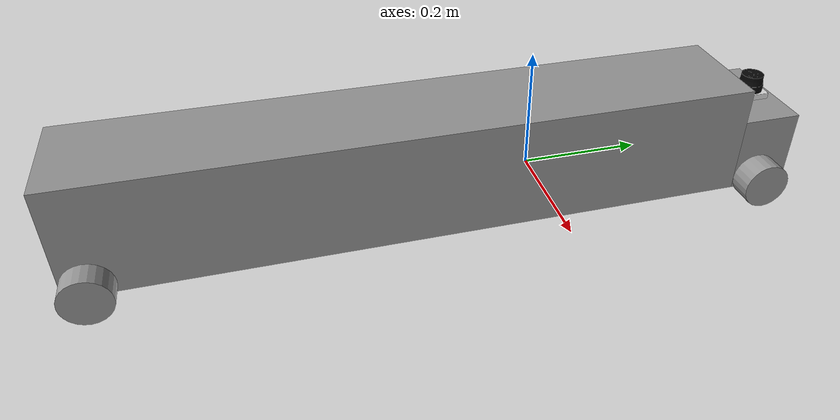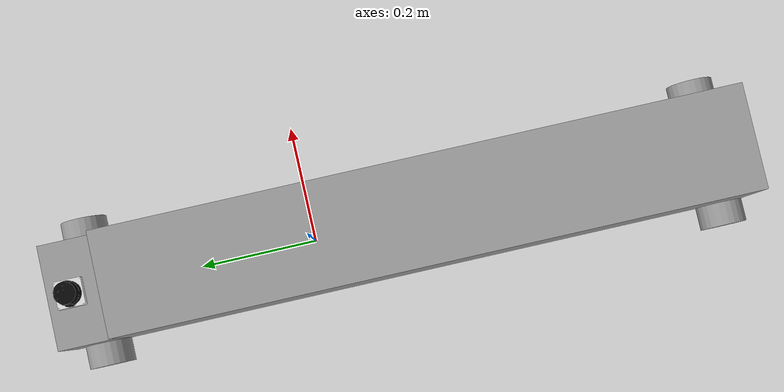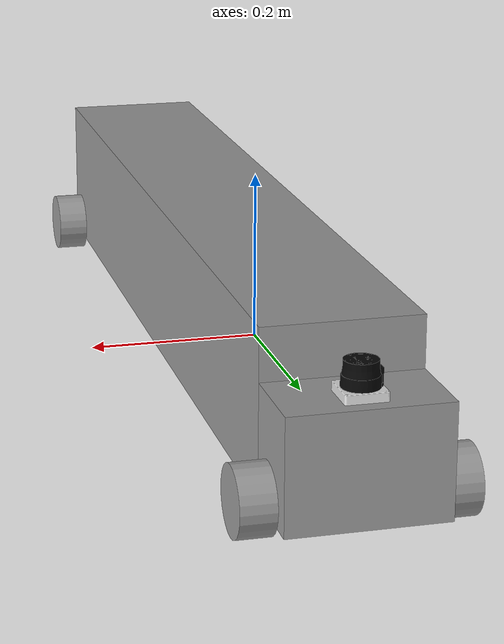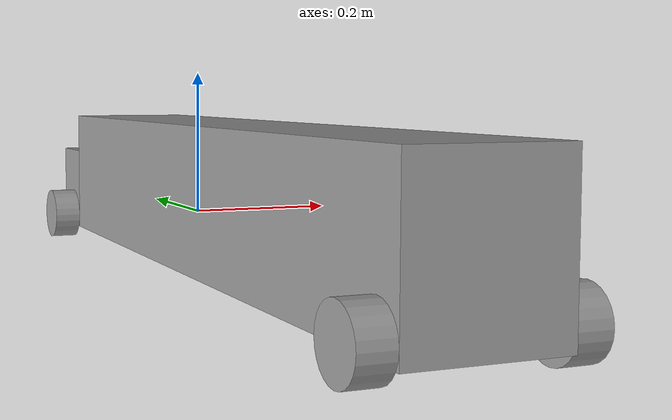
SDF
<?xml version='1.0'?>
<sdf version='1.6'>
  <model name='FV'>
    <link name='link_0'>
      <pose frame=''>0 0.404311 0.007146 0 -0 0</pose>
      <inertial>
        <mass>1</mass>
        <inertia>
          <ixx>0.166667</ixx>
          <ixy>0</ixy>
          <ixz>0</ixz>
          <iyy>0.166667</iyy>
          <iyz>0</iyz>
          <izz>0.166667</izz>
        </inertia>
        <pose frame=''>0 0 0 0 -0 0</pose>
      </inertial>
      <gravity>1</gravity>
      <self_collide>0</self_collide>
      <kinematic>0</kinematic>
      <visual name='visual'>
        <pose frame=''>0 0 0 0 -0 0</pose>
        <geometry>
          <box>
            <size>0.18 0.1 0.13</size>
          </box>
        </geometry>
        <material>
          <lighting>1</lighting>
          <script>
            <uri>file://media/materials/scripts/gazebo.material</uri>
            <name>Gazebo/Grey</name>
          </script>
          <ambient>0.3 0.3 0.3 1</ambient>
          <diffuse>0.7 0.7 0.7 1</diffuse>
          <specular>0.01 0.01 0.01 1</specular>
          <emissive>0 0 0 1</emissive>
          <shader type='vertex'>
            <normal_map>__default__</normal_map>
          </shader>
        </material>
        <cast_shadows>1</cast_shadows>
        <transparency>0</transparency>
      </visual>
      <collision name='collision'>
        <laser_retro>0</laser_retro>
        <max_contacts>10</max_contacts>
        <pose frame=''>0 0 0 0 -0 0</pose>
        <geometry>
          <box>
            <size>0.18 0.1 0.13</size>
          </box>
        </geometry>
        <surface>
          <friction>
            <ode>
              <mu>1</mu>
              <mu2>1</mu2>
              <fdir1>0 0 0</fdir1>
              <slip1>0</slip1>
              <slip2>0</slip2>
            </ode>
            <torsional>
              <coefficient>1</coefficient>
              <patch_radius>0</patch_radius>
              <surface_radius>0</surface_radius>
              <use_patch_radius>1</use_patch_radius>
              <ode>
                <slip>0</slip>
              </ode>
            </torsional>
          </friction>
          <bounce>
            <restitution_coefficient>0</restitution_coefficient>
            <threshold>1e+06</threshold>
          </bounce>
          <contact>
            <collide_without_contact>0</collide_without_contact>
            <collide_without_contact_bitmask>1</collide_without_contact_bitmask>
            <collide_bitmask>1</collide_bitmask>
            <ode>
              <soft_cfm>0</soft_cfm>
              <soft_erp>0.2</soft_erp>
              <kp>1e+13</kp>
              <kd>1</kd>
              <max_vel>0.01</max_vel>
              <min_depth>0</min_depth>
            </ode>
            <bullet>
              <split_impulse>1</split_impulse>
              <split_impulse_penetration_threshold>-0.01</split_impulse_penetration_threshold>
              <soft_cfm>0</soft_cfm>
              <soft_erp>0.2</soft_erp>
              <kp>1e+13</kp>
              <kd>1</kd>
            </bullet>
          </contact>
        </surface>
      </collision>
    </link>
    <link name='link_1'>
      <pose frame=''>0 -0.195689 0.037146 0 -0 0</pose>
      <inertial>
        <mass>1</mass>
        <inertia>
          <ixx>0.166667</ixx>
          <ixy>0</ixy>
          <ixz>0</ixz>
          <iyy>0.166667</iyy>
          <iyz>0</iyz>
          <izz>0.166667</izz>
        </inertia>
        <pose frame=''>0 0 0 0 -0 0</pose>
      </inertial>
      <gravity>1</gravity>
      <self_collide>0</self_collide>
      <kinematic>0</kinematic>
      <visual name='visual'>
        <pose frame=''>0 0 0 0 -0 0</pose>
        <geometry>
          <box>
            <size>0.18 1.1 0.19</size>
          </box>
        </geometry>
        <material>
          <lighting>1</lighting>
          <script>
            <uri>file://media/materials/scripts/gazebo.material</uri>
            <name>Gazebo/Grey</name>
          </script>
          <ambient>0.3 0.3 0.3 1</ambient>
          <diffuse>0.7 0.7 0.7 1</diffuse>
          <specular>0.01 0.01 0.01 1</specular>
          <emissive>0 0 0 1</emissive>
          <shader type='vertex'>
            <normal_map>__default__</normal_map>
          </shader>
        </material>
        <cast_shadows>1</cast_shadows>
        <transparency>0</transparency>
      </visual>
      <collision name='collision'>
        <laser_retro>0</laser_retro>
        <max_contacts>10</max_contacts>
        <pose frame=''>0 0 0 0 -0 0</pose>
        <geometry>
          <box>
            <size>0.18 1.1 0.19</size>
          </box>
        </geometry>
        <surface>
          <friction>
            <ode>
              <mu>1</mu>
              <mu2>1</mu2>
              <fdir1>0 0 0</fdir1>
              <slip1>0</slip1>
              <slip2>0</slip2>
            </ode>
            <torsional>
              <coefficient>1</coefficient>
              <patch_radius>0</patch_radius>
              <surface_radius>0</surface_radius>
              <use_patch_radius>1</use_patch_radius>
              <ode>
                <slip>0</slip>
              </ode>
            </torsional>
          </friction>
          <bounce>
            <restitution_coefficient>0</restitution_coefficient>
            <threshold>1e+06</threshold>
          </bounce>
          <contact>
            <collide_without_contact>0</collide_without_contact>
            <collide_without_contact_bitmask>1</collide_without_contact_bitmask>
            <collide_bitmask>1</collide_bitmask>
            <ode>
              <soft_cfm>0</soft_cfm>
              <soft_erp>0.2</soft_erp>
              <kp>1e+13</kp>
              <kd>1</kd>
              <max_vel>0.01</max_vel>
              <min_depth>0</min_depth>
            </ode>
            <bullet>
              <split_impulse>1</split_impulse>
              <split_impulse_penetration_threshold>-0.01</split_impulse_penetration_threshold>
              <soft_cfm>0</soft_cfm>
              <soft_erp>0.2</soft_erp>
              <kp>1e+13</kp>
              <kd>1</kd>
            </bullet>
          </contact>
        </surface>
      </collision>
    </link>
    <link name='link_2_clone'>
      <pose frame=''>0.110004 0.394311 -0.037854 0 1.5707 0</pose>
      <inertial>
        <mass>1</mass>
        <inertia>
          <ixx>0.145833</ixx>
          <ixy>0</ixy>
          <ixz>0</ixz>
          <iyy>0.145833</iyy>
          <iyz>0</iyz>
          <izz>0.125</izz>
        </inertia>
        <pose frame=''>0 0 0 0 -0 0</pose>
      </inertial>
      <self_collide>0</self_collide>
      <kinematic>0</kinematic>
      <visual name='visual'>
        <pose frame=''>0 0 0 0 -0 0</pose>
        <geometry>
          <cylinder>
            <radius>0.04</radius>
            <length>0.04</length>
          </cylinder>
        </geometry>
        <material>
          <lighting>1</lighting>
          <script>
            <uri>file://media/materials/scripts/gazebo.material</uri>
            <name>Gazebo/Grey</name>
          </script>
          <ambient>0.3 0.3 0.3 1</ambient>
          <diffuse>0.7 0.7 0.7 1</diffuse>
          <specular>0.01 0.01 0.01 1</specular>
          <emissive>0 0 0 1</emissive>
          <shader type='vertex'>
            <normal_map>__default__</normal_map>
          </shader>
        </material>
        <cast_shadows>1</cast_shadows>
        <transparency>0</transparency>
      </visual>
      <collision name='collision'>
        <laser_retro>0</laser_retro>
        <max_contacts>10</max_contacts>
        <pose frame=''>0 0 0 0 -0 0</pose>
        <geometry>
          <cylinder>
            <radius>0.04</radius>
            <length>0.04</length>
          </cylinder>
        </geometry>
        <surface>
          <friction>
            <ode>
              <mu>1</mu>
              <mu2>1</mu2>
              <fdir1>0 0 0</fdir1>
              <slip1>0</slip1>
              <slip2>0</slip2>
            </ode>
            <torsional>
              <coefficient>1</coefficient>
              <patch_radius>0</patch_radius>
              <surface_radius>0</surface_radius>
              <use_patch_radius>1</use_patch_radius>
              <ode>
                <slip>0</slip>
              </ode>
            </torsional>
          </friction>
          <bounce>
            <restitution_coefficient>0</restitution_coefficient>
            <threshold>1e+06</threshold>
          </bounce>
          <contact>
            <collide_without_contact>0</collide_without_contact>
            <collide_without_contact_bitmask>1</collide_without_contact_bitmask>
            <collide_bitmask>1</collide_bitmask>
            <ode>
              <soft_cfm>0</soft_cfm>
              <soft_erp>0.2</soft_erp>
              <kp>1e+13</kp>
              <kd>1</kd>
              <max_vel>0.01</max_vel>
              <min_depth>0</min_depth>
            </ode>
            <bullet>
              <split_impulse>1</split_impulse>
              <split_impulse_penetration_threshold>-0.01</split_impulse_penetration_threshold>
              <soft_cfm>0</soft_cfm>
              <soft_erp>0.2</soft_erp>
              <kp>1e+13</kp>
              <kd>1</kd>
            </bullet>
          </contact>
        </surface>
      </collision>
    </link>
    <link name='link_2_clone_0'>
      <pose frame=''>-0.110004 -0.705689 -0.037854 0 1.5707 0</pose>
      <inertial>
        <mass>1</mass>
        <inertia>
          <ixx>0.145833</ixx>
          <ixy>0</ixy>
          <ixz>0</ixz>
          <iyy>0.145833</iyy>
          <iyz>0</iyz>
          <izz>0.125</izz>
        </inertia>
        <pose frame=''>0 0 0 0 -0 0</pose>
      </inertial>
      <self_collide>0</self_collide>
      <kinematic>0</kinematic>
      <visual name='visual'>
        <pose frame=''>0 0 0 0 -0 0</pose>
        <geometry>
          <cylinder>
            <radius>0.04</radius>
            <length>0.04</length>
          </cylinder>
        </geometry>
        <material>
          <lighting>1</lighting>
          <script>
            <uri>file://media/materials/scripts/gazebo.material</uri>
            <name>Gazebo/Grey</name>
          </script>
          <ambient>0.3 0.3 0.3 1</ambient>
          <diffuse>0.7 0.7 0.7 1</diffuse>
          <specular>0.01 0.01 0.01 1</specular>
          <emissive>0 0 0 1</emissive>
          <shader type='vertex'>
            <normal_map>__default__</normal_map>
          </shader>
        </material>
        <cast_shadows>1</cast_shadows>
        <transparency>0</transparency>
      </visual>
      <collision name='collision'>
        <laser_retro>0</laser_retro>
        <max_contacts>10</max_contacts>
        <pose frame=''>0 0 0 0 -0 0</pose>
        <geometry>
          <cylinder>
            <radius>0.04</radius>
            <length>0.04</length>
          </cylinder>
        </geometry>
        <surface>
          <friction>
            <ode>
              <mu>1</mu>
              <mu2>1</mu2>
              <fdir1>0 0 0</fdir1>
              <slip1>0</slip1>
              <slip2>0</slip2>
            </ode>
            <torsional>
              <coefficient>1</coefficient>
              <patch_radius>0</patch_radius>
              <surface_radius>0</surface_radius>
              <use_patch_radius>1</use_patch_radius>
              <ode>
                <slip>0</slip>
              </ode>
            </torsional>
          </friction>
          <bounce>
            <restitution_coefficient>0</restitution_coefficient>
            <threshold>1e+06</threshold>
          </bounce>
          <contact>
            <collide_without_contact>0</collide_without_contact>
            <collide_without_contact_bitmask>1</collide_without_contact_bitmask>
            <collide_bitmask>1</collide_bitmask>
            <ode>
              <soft_cfm>0</soft_cfm>
              <soft_erp>0.2</soft_erp>
              <kp>1e+13</kp>
              <kd>1</kd>
              <max_vel>0.01</max_vel>
              <min_depth>0</min_depth>
            </ode>
            <bullet>
              <split_impulse>1</split_impulse>
              <split_impulse_penetration_threshold>-0.01</split_impulse_penetration_threshold>
              <soft_cfm>0</soft_cfm>
              <soft_erp>0.2</soft_erp>
              <kp>1e+13</kp>
              <kd>1</kd>
            </bullet>
          </contact>
        </surface>
      </collision>
    </link>
    <link name='link_2_clone_0_clone'>
      <pose frame=''>-0.110004 0.394311 -0.037854 0 1.5707 0</pose>
      <inertial>
        <mass>1</mass>
        <inertia>
          <ixx>0.145833</ixx>
          <ixy>0</ixy>
          <ixz>0</ixz>
          <iyy>0.145833</iyy>
          <iyz>0</iyz>
          <izz>0.125</izz>
        </inertia>
        <pose frame=''>0 0 0 0 -0 0</pose>
      </inertial>
      <self_collide>0</self_collide>
      <kinematic>0</kinematic>
      <visual name='visual'>
        <pose frame=''>0 0 0 0 -0 0</pose>
        <geometry>
          <cylinder>
            <radius>0.04</radius>
            <length>0.04</length>
          </cylinder>
        </geometry>
        <material>
          <lighting>1</lighting>
          <script>
            <uri>file://media/materials/scripts/gazebo.material</uri>
            <name>Gazebo/Grey</name>
          </script>
          <ambient>0.3 0.3 0.3 1</ambient>
          <diffuse>0.7 0.7 0.7 1</diffuse>
          <specular>0.01 0.01 0.01 1</specular>
          <emissive>0 0 0 1</emissive>
          <shader type='vertex'>
            <normal_map>__default__</normal_map>
          </shader>
        </material>
        <cast_shadows>1</cast_shadows>
        <transparency>0</transparency>
      </visual>
      <collision name='collision'>
        <laser_retro>0</laser_retro>
        <max_contacts>10</max_contacts>
        <pose frame=''>0 0 0 0 -0 0</pose>
        <geometry>
          <cylinder>
            <radius>0.04</radius>
            <length>0.04</length>
          </cylinder>
        </geometry>
        <surface>
          <friction>
            <ode>
              <mu>1</mu>
              <mu2>1</mu2>
              <fdir1>0 0 0</fdir1>
              <slip1>0</slip1>
              <slip2>0</slip2>
            </ode>
            <torsional>
              <coefficient>1</coefficient>
              <patch_radius>0</patch_radius>
              <surface_radius>0</surface_radius>
              <use_patch_radius>1</use_patch_radius>
              <ode>
                <slip>0</slip>
              </ode>
            </torsional>
          </friction>
          <bounce>
            <restitution_coefficient>0</restitution_coefficient>
            <threshold>1e+06</threshold>
          </bounce>
          <contact>
            <collide_without_contact>0</collide_without_contact>
            <collide_without_contact_bitmask>1</collide_without_contact_bitmask>
            <collide_bitmask>1</collide_bitmask>
            <ode>
              <soft_cfm>0</soft_cfm>
              <soft_erp>0.2</soft_erp>
              <kp>1e+13</kp>
              <kd>1</kd>
              <max_vel>0.01</max_vel>
              <min_depth>0</min_depth>
            </ode>
            <bullet>
              <split_impulse>1</split_impulse>
              <split_impulse_penetration_threshold>-0.01</split_impulse_penetration_threshold>
              <soft_cfm>0</soft_cfm>
              <soft_erp>0.2</soft_erp>
              <kp>1e+13</kp>
              <kd>1</kd>
            </bullet>
          </contact>
        </surface>
      </collision>
    </link>
    <link name='link_2_clone_1'>
      <pose frame=''>0.110004 -0.705689 -0.037854 0 1.5707 0</pose>
      <inertial>
        <mass>1</mass>
        <inertia>
          <ixx>0.145833</ixx>
          <ixy>0</ixy>
          <ixz>0</ixz>
          <iyy>0.145833</iyy>
          <iyz>0</iyz>
          <izz>0.125</izz>
        </inertia>
        <pose frame=''>0 0 0 0 -0 0</pose>
      </inertial>
      <self_collide>0</self_collide>
      <kinematic>0</kinematic>
      <visual name='visual'>
        <pose frame=''>0 0 0 0 -0 0</pose>
        <geometry>
          <cylinder>
            <radius>0.04</radius>
            <length>0.04</length>
          </cylinder>
        </geometry>
        <material>
          <lighting>1</lighting>
          <script>
            <uri>file://media/materials/scripts/gazebo.material</uri>
            <name>Gazebo/Grey</name>
          </script>
          <ambient>0.3 0.3 0.3 1</ambient>
          <diffuse>0.7 0.7 0.7 1</diffuse>
          <specular>0.01 0.01 0.01 1</specular>
          <emissive>0 0 0 1</emissive>
          <shader type='vertex'>
            <normal_map>__default__</normal_map>
          </shader>
        </material>
        <cast_shadows>1</cast_shadows>
        <transparency>0</transparency>
      </visual>
      <collision name='collision'>
        <laser_retro>0</laser_retro>
        <max_contacts>10</max_contacts>
        <pose frame=''>0 0 0 0 -0 0</pose>
        <geometry>
          <cylinder>
            <radius>0.04</radius>
            <length>0.04</length>
          </cylinder>
        </geometry>
        <surface>
          <friction>
            <ode>
              <mu>1</mu>
              <mu2>1</mu2>
              <fdir1>0 0 0</fdir1>
              <slip1>0</slip1>
              <slip2>0</slip2>
            </ode>
            <torsional>
              <coefficient>1</coefficient>
              <patch_radius>0</patch_radius>
              <surface_radius>0</surface_radius>
              <use_patch_radius>1</use_patch_radius>
              <ode>
                <slip>0</slip>
              </ode>
            </torsional>
          </friction>
          <bounce>
            <restitution_coefficient>0</restitution_coefficient>
            <threshold>1e+06</threshold>
          </bounce>
          <contact>
            <collide_without_contact>0</collide_without_contact>
            <collide_without_contact_bitmask>1</collide_without_contact_bitmask>
            <collide_bitmask>1</collide_bitmask>
            <ode>
              <soft_cfm>0</soft_cfm>
              <soft_erp>0.2</soft_erp>
              <kp>1e+13</kp>
              <kd>1</kd>
              <max_vel>0.01</max_vel>
              <min_depth>0</min_depth>
            </ode>
            <bullet>
              <split_impulse>1</split_impulse>
              <split_impulse_penetration_threshold>-0.01</split_impulse_penetration_threshold>
              <soft_cfm>0</soft_cfm>
              <soft_erp>0.2</soft_erp>
              <kp>1e+13</kp>
              <kd>1</kd>
            </bullet>
          </contact>
        </surface>
      </collision>
    </link>
    <!--model name='hokuyo'-->
    <link name='link'>
      <gravity>0</gravity>
      <inertial>
        <mass>0.1</mass>
      </inertial>
      <visual name='visual'>
        <geometry>
          <mesh>
            <uri>model://hokuyo/meshes/hokuyo.dae</uri>
          </mesh>
        </geometry>
      </visual>
      <sensor name='laser' type='ray'>
        <pose frame=''>0.01 0 0.03 0 -0 1.5707</pose>
        <ray>
          <scan>
            <horizontal>
              <samples>640</samples>
              <resolution>1</resolution>
              <min_angle>-2.26889</min_angle>
              <max_angle>2.2689</max_angle>
            </horizontal>
          </scan>
          <range>
            <min>0.08</min>
            <max>10</max>
            <resolution>0.01</resolution>
          </range>
        </ray>
        <plugin name='laser' filename='libRayPlugin.so'/>
        <always_on>1</always_on>
        <update_rate>30</update_rate>
        <visualize>1</visualize>
      </sensor>
    <pose frame=''>0 0.414133 0.076355 0 -0 0</pose>
    </link>
    <!--/model-->
    <joint name='chassis' type='continuous'>
      <parent>link_0</parent>
      <child>link_1</child>
      <pose frame=''>0 0 0 0 -0 0</pose>
      <axis>
        <xyz>0 1 0</xyz>
        <use_parent_model_frame>0</use_parent_model_frame>
        <limit>
          <lower>-1.79769e+308</lower>
          <upper>1.79769e+308</upper>
          <effort>-1</effort>
          <velocity>-1</velocity>
        </limit>
        <dynamics>
          <spring_reference>0</spring_reference>
          <spring_stiffness>0</spring_stiffness>
          <damping>0</damping>
        </dynamics>
      </axis>
      <physics>
        <ode>
          <limit>
            <cfm>0</cfm>
            <erp>0.2</erp>
          </limit>
          <suspension>
            <cfm>0</cfm>
            <erp>0.2</erp>
          </suspension>
        </ode>
      </physics>
    </joint>
    <joint name='front_left' type='continuous'>
      <parent>link_0</parent>
      <child>link_2_clone_0_clone</child>
      <pose frame=''>0 0 0 0 -0 0</pose>
      <axis>
        <xyz>0 0 1</xyz>
        <use_parent_model_frame>0</use_parent_model_frame>
        <limit>
          <lower>-1.79769e+308</lower>
          <upper>1.79769e+308</upper>
          <effort>-1</effort>
          <velocity>-1</velocity>
        </limit>
        <dynamics>
          <spring_reference>0</spring_reference>
          <spring_stiffness>0</spring_stiffness>
          <damping>0</damping>
        </dynamics>
      </axis>
      <physics>
        <ode>
          <limit>
            <cfm>0</cfm>
            <erp>0.2</erp>
          </limit>
          <suspension>
            <cfm>0</cfm>
            <erp>0.2</erp>
          </suspension>
        </ode>
      </physics>
    </joint>
    <joint name='front_right' type='continuous'>
      <parent>link_0</parent>
      <child>link_2_clone</child>
      <pose frame=''>0 0 0 0 -0 0</pose>
      <axis>
        <xyz>0 0 1</xyz>
        <use_parent_model_frame>0</use_parent_model_frame>
        <limit>
          <lower>-1.79769e+308</lower>
          <upper>1.79769e+308</upper>
          <effort>-1</effort>
          <velocity>-1</velocity>
        </limit>
        <dynamics>
          <spring_reference>0</spring_reference>
          <spring_stiffness>0</spring_stiffness>
          <damping>0</damping>
        </dynamics>
      </axis>
      <physics>
        <ode>
          <limit>
            <cfm>0</cfm>
            <erp>0.2</erp>
          </limit>
          <suspension>
            <cfm>0</cfm>
            <erp>0.2</erp>
          </suspension>
        </ode>
      </physics>
    </joint>
    <joint name='lidar' type='revolute'>
      <parent>link_0</parent>
      <child>link</child>
      <pose frame=''>0 0 0 0 -0 0</pose>
      <axis>
        <xyz>1 0 0</xyz>
        <use_parent_model_frame>0</use_parent_model_frame>
        <limit>
          <lower>-1.79769e+308</lower>
          <upper>1.79769e+308</upper>
          <effort>-1</effort>
          <velocity>-1</velocity>
        </limit>
        <dynamics>
          <spring_reference>0</spring_reference>
          <spring_stiffness>0</spring_stiffness>
          <damping>0</damping>
        </dynamics>
      </axis>
      <physics>
        <ode>
          <limit>
            <cfm>0</cfm>
            <erp>0.2</erp>
          </limit>
          <suspension>
            <cfm>0</cfm>
            <erp>0.2</erp>
          </suspension>
        </ode>
      </physics>
    </joint>
    <joint name='rear_left' type='continuous'>
      <parent>link_1</parent>
      <child>link_2_clone_0</child>
      <pose frame=''>0 0 0 0 -0 0</pose>
      <axis>
        <xyz>0 0 1</xyz>
        <use_parent_model_frame>0</use_parent_model_frame>
        <limit>
          <lower>-1.79769e+308</lower>
          <upper>1.79769e+308</upper>
          <effort>-1</effort>
          <velocity>-1</velocity>
        </limit>
        <dynamics>
          <spring_reference>0</spring_reference>
          <spring_stiffness>0</spring_stiffness>
          <damping>0</damping>
        </dynamics>
      </axis>
      <physics>
        <ode>
          <limit>
            <cfm>0</cfm>
            <erp>0.2</erp>
          </limit>
          <suspension>
            <cfm>0</cfm>
            <erp>0.2</erp>
          </suspension>
        </ode>
      </physics>
    </joint>
    <joint name='rear_right' type='continuous'>
      <parent>link_1</parent>
      <child>link_2_clone_1</child>
      <pose frame=''>0 0 0 0 -0 0</pose>
      <axis>
        <xyz>0 0 1</xyz>
        <use_parent_model_frame>0</use_parent_model_frame>
        <limit>
          <lower>-1.79769e+308</lower>
          <upper>1.79769e+308</upper>
          <effort>-1</effort>
          <velocity>-1</velocity>
        </limit>
        <dynamics>
          <spring_reference>0</spring_reference>
          <spring_stiffness>0</spring_stiffness>
          <damping>0</damping>
        </dynamics>
      </axis>
      <physics>
        <ode>
          <limit>
            <cfm>0</cfm>
            <erp>0.2</erp>
          </limit>
          <suspension>
            <cfm>0</cfm>
            <erp>0.2</erp>
          </suspension>
        </ode>
      </physics>
    </joint>
    <static>0</static>
    <allow_auto_disable>1</allow_auto_disable>
  </model>
</sdf>
